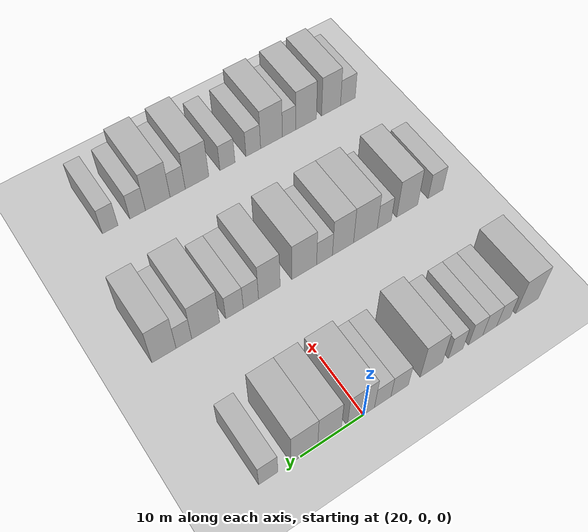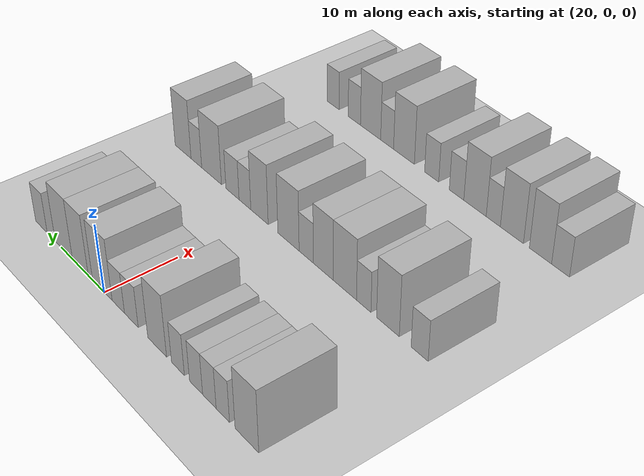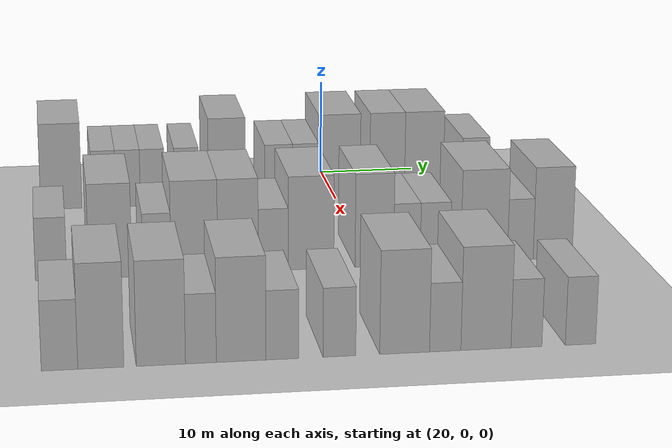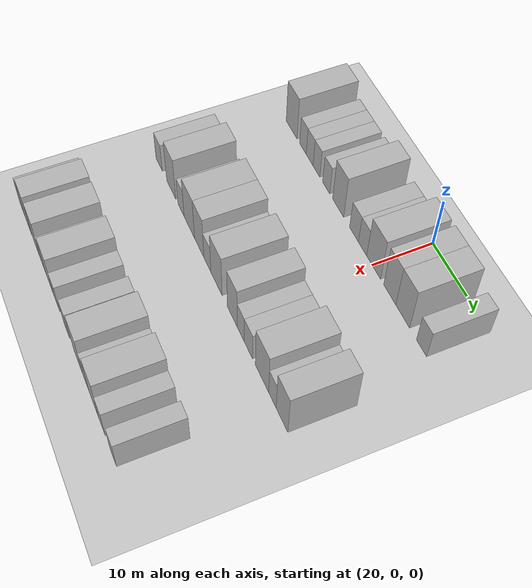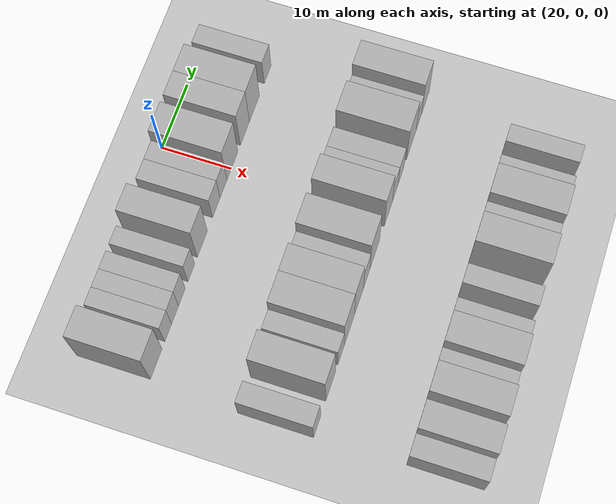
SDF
<sdf version="1.6">
 <world name="default">
  <include><name>ground_plane_1</name><uri>model://HANNAS_ground_plane</uri></include>
  <model name="building_88">
   <static>1</static>
   <pose>25.0000 -28.3885 0 0.000000 0.000000 0.000000</pose>
   <link name="link">
    <pose>0 0 4.50 0 0 0</pose>
    <collision name="collision"><geometry><box><size>10.0000 4.1904 9.0000</size></box></geometry></collision>
    <visual name="visual">
     <cast_shadows>0</cast_shadows>
     <geometry><box><size>10.0000 4.1904 9.0000</size></box></geometry>
     <material>
      <script>
       <uri>model://HANNAS_wall/materials/scripts</uri>
       <uri>model://HANNAS_wall/materials/textures</uri>
       <name>vrc/HANNAS_wall</name>
      </script>
     </material>
    </visual>
   </link>
  </model>
  <model name="building_89">
   <static>1</static>
   <pose>25.0000 -24.0654 0 0.000000 0.000000 0.000000</pose>
   <link name="link">
    <pose>0 0 3.00 0 0 0</pose>
    <collision name="collision"><geometry><box><size>10.0000 2.4556 6.0000</size></box></geometry></collision>
    <visual name="visual">
     <cast_shadows>0</cast_shadows>
     <geometry><box><size>10.0000 2.4556 6.0000</size></box></geometry>
     <material>
      <script>
       <uri>model://HANNAS_wall/materials/scripts</uri>
       <uri>model://HANNAS_wall/materials/textures</uri>
       <name>vrc/HANNAS_wall</name>
      </script>
     </material>
    </visual>
   </link>
  </model>
  <model name="building_90">
   <static>1</static>
   <pose>25.0000 -21.5696 0 0.000000 0.000000 0.000000</pose>
   <link name="link">
    <pose>0 0 3.00 0 0 0</pose>
    <collision name="collision"><geometry><box><size>10.0000 2.5361 6.0000</size></box></geometry></collision>
    <visual name="visual">
     <cast_shadows>0</cast_shadows>
     <geometry><box><size>10.0000 2.5361 6.0000</size></box></geometry>
     <material>
      <script>
       <uri>model://HANNAS_wall/materials/scripts</uri>
       <uri>model://HANNAS_wall/materials/textures</uri>
       <name>vrc/HANNAS_wall</name>
      </script>
     </material>
    </visual>
   </link>
  </model>
  <model name="building_91">
   <static>1</static>
   <pose>25.0000 -19.0458 0 0.000000 0.000000 0.000000</pose>
   <link name="link">
    <pose>0 0 3.00 0 0 0</pose>
    <collision name="collision"><geometry><box><size>10.0000 2.5114 6.0000</size></box></geometry></collision>
    <visual name="visual">
     <cast_shadows>0</cast_shadows>
     <geometry><box><size>10.0000 2.5114 6.0000</size></box></geometry>
     <material>
      <script>
       <uri>model://HANNAS_wall/materials/scripts</uri>
       <uri>model://HANNAS_wall/materials/textures</uri>
       <name>vrc/HANNAS_wall</name>
      </script>
     </material>
    </visual>
   </link>
  </model>
  <model name="building_92">
   <static>1</static>
   <pose>25.0000 -15.5203 0 0.000000 0.000000 0.000000</pose>
   <link name="link">
    <pose>0 0 3.00 0 0 0</pose>
    <collision name="collision"><geometry><box><size>10.0000 2.5397 6.0000</size></box></geometry></collision>
    <visual name="visual">
     <cast_shadows>0</cast_shadows>
     <geometry><box><size>10.0000 2.5397 6.0000</size></box></geometry>
     <material>
      <script>
       <uri>model://HANNAS_wall/materials/scripts</uri>
       <uri>model://HANNAS_wall/materials/textures</uri>
       <name>vrc/HANNAS_wall</name>
      </script>
     </material>
    </visual>
   </link>
  </model>
  <model name="building_93">
   <static>1</static>
   <pose>25.0000 -11.3293 0 0.000000 0.000000 0.000000</pose>
   <link name="link">
    <pose>0 0 4.50 0 0 0</pose>
    <collision name="collision"><geometry><box><size>10.0000 3.8422 9.0000</size></box></geometry></collision>
    <visual name="visual">
     <cast_shadows>0</cast_shadows>
     <geometry><box><size>10.0000 3.8422 9.0000</size></box></geometry>
     <material>
      <script>
       <uri>model://HANNAS_wall/materials/scripts</uri>
       <uri>model://HANNAS_wall/materials/textures</uri>
       <name>vrc/HANNAS_wall</name>
      </script>
     </material>
    </visual>
   </link>
  </model>
  <model name="building_94">
   <static>1</static>
   <pose>25.0000 -5.9409 0 0.000000 0.000000 0.000000</pose>
   <link name="link">
    <pose>0 0 3.00 0 0 0</pose>
    <collision name="collision"><geometry><box><size>10.0000 2.9345 6.0000</size></box></geometry></collision>
    <visual name="visual">
     <cast_shadows>0</cast_shadows>
     <geometry><box><size>10.0000 2.9345 6.0000</size></box></geometry>
     <material>
      <script>
       <uri>model://HANNAS_wall/materials/scripts</uri>
       <uri>model://HANNAS_wall/materials/textures</uri>
       <name>vrc/HANNAS_wall</name>
      </script>
     </material>
    </visual>
   </link>
  </model>
  <model name="building_95">
   <static>1</static>
   <pose>25.0000 -3.1197 0 0.000000 0.000000 0.000000</pose>
   <link name="link">
    <pose>0 0 3.00 0 0 0</pose>
    <collision name="collision"><geometry><box><size>10.0000 2.7080 6.0000</size></box></geometry></collision>
    <visual name="visual">
     <cast_shadows>0</cast_shadows>
     <geometry><box><size>10.0000 2.7080 6.0000</size></box></geometry>
     <material>
      <script>
       <uri>model://HANNAS_wall/materials/scripts</uri>
       <uri>model://HANNAS_wall/materials/textures</uri>
       <name>vrc/HANNAS_wall</name>
      </script>
     </material>
    </visual>
   </link>
  </model>
  <model name="building_96">
   <static>1</static>
   <pose>25.0000 0.4315 0 0.000000 0.000000 0.000000</pose>
   <link name="link">
    <pose>0 0 4.50 0 0 0</pose>
    <collision name="collision"><geometry><box><size>10.0000 4.3944 9.0000</size></box></geometry></collision>
    <visual name="visual">
     <cast_shadows>0</cast_shadows>
     <geometry><box><size>10.0000 4.3944 9.0000</size></box></geometry>
     <material>
      <script>
       <uri>model://HANNAS_wall/materials/scripts</uri>
       <uri>model://HANNAS_wall/materials/textures</uri>
       <name>vrc/HANNAS_wall</name>
      </script>
     </material>
    </visual>
   </link>
  </model>
  <model name="building_97">
   <static>1</static>
   <pose>25.0000 5.4753 0 0.000000 0.000000 0.000000</pose>
   <link name="link">
    <pose>0 0 4.50 0 0 0</pose>
    <collision name="collision"><geometry><box><size>10.0000 3.6933 9.0000</size></box></geometry></collision>
    <visual name="visual">
     <cast_shadows>0</cast_shadows>
     <geometry><box><size>10.0000 3.6933 9.0000</size></box></geometry>
     <material>
      <script>
       <uri>model://HANNAS_wall/materials/scripts</uri>
       <uri>model://HANNAS_wall/materials/textures</uri>
       <name>vrc/HANNAS_wall</name>
      </script>
     </material>
    </visual>
   </link>
  </model>
  <model name="building_98">
   <static>1</static>
   <pose>25.0000 9.3908 0 0.000000 0.000000 0.000000</pose>
   <link name="link">
    <pose>0 0 4.50 0 0 0</pose>
    <collision name="collision"><geometry><box><size>10.0000 4.1376 9.0000</size></box></geometry></collision>
    <visual name="visual">
     <cast_shadows>0</cast_shadows>
     <geometry><box><size>10.0000 4.1376 9.0000</size></box></geometry>
     <material>
      <script>
       <uri>model://HANNAS_wall/materials/scripts</uri>
       <uri>model://HANNAS_wall/materials/textures</uri>
       <name>vrc/HANNAS_wall</name>
      </script>
     </material>
    </visual>
   </link>
  </model>
  <model name="building_99">
   <static>1</static>
   <pose>25.0000 14.9051 0 0.000000 0.000000 0.000000</pose>
   <link name="link">
    <pose>0 0 3.00 0 0 0</pose>
    <collision name="collision"><geometry><box><size>10.0000 2.8911 6.0000</size></box></geometry></collision>
    <visual name="visual">
     <cast_shadows>0</cast_shadows>
     <geometry><box><size>10.0000 2.8911 6.0000</size></box></geometry>
     <material>
      <script>
       <uri>model://HANNAS_wall/materials/scripts</uri>
       <uri>model://HANNAS_wall/materials/textures</uri>
       <name>vrc/HANNAS_wall</name>
      </script>
     </material>
    </visual>
   </link>
  </model>
  <model name="building_275">
   <static>1</static>
   <pose>47.0000 -29.7096 0 0.000000 0.000000 0.000000</pose>
   <link name="link">
    <pose>0 0 3.00 0 0 0</pose>
    <collision name="collision"><geometry><box><size>10.0000 2.8460 6.0000</size></box></geometry></collision>
    <visual name="visual">
     <cast_shadows>0</cast_shadows>
     <geometry><box><size>10.0000 2.8460 6.0000</size></box></geometry>
     <material>
      <script>
       <uri>model://HANNAS_wall/materials/scripts</uri>
       <uri>model://HANNAS_wall/materials/textures</uri>
       <name>vrc/HANNAS_wall</name>
      </script>
     </material>
    </visual>
   </link>
  </model>
  <model name="building_276">
   <static>1</static>
   <pose>47.0000 -24.3093 0 0.000000 0.000000 0.000000</pose>
   <link name="link">
    <pose>0 0 4.50 0 0 0</pose>
    <collision name="collision"><geometry><box><size>10.0000 3.9545 9.0000</size></box></geometry></collision>
    <visual name="visual">
     <cast_shadows>0</cast_shadows>
     <geometry><box><size>10.0000 3.9545 9.0000</size></box></geometry>
     <material>
      <script>
       <uri>model://HANNAS_wall/materials/scripts</uri>
       <uri>model://HANNAS_wall/materials/textures</uri>
       <name>vrc/HANNAS_wall</name>
      </script>
     </material>
    </visual>
   </link>
  </model>
  <model name="building_277">
   <static>1</static>
   <pose>47.0000 -20.0316 0 0.000000 0.000000 0.000000</pose>
   <link name="link">
    <pose>0 0 3.00 0 0 0</pose>
    <collision name="collision"><geometry><box><size>10.0000 2.6008 6.0000</size></box></geometry></collision>
    <visual name="visual">
     <cast_shadows>0</cast_shadows>
     <geometry><box><size>10.0000 2.6008 6.0000</size></box></geometry>
     <material>
      <script>
       <uri>model://HANNAS_wall/materials/scripts</uri>
       <uri>model://HANNAS_wall/materials/textures</uri>
       <name>vrc/HANNAS_wall</name>
      </script>
     </material>
    </visual>
   </link>
  </model>
  <model name="building_278">
   <static>1</static>
   <pose>47.0000 -16.5733 0 0.000000 0.000000 0.000000</pose>
   <link name="link">
    <pose>0 0 4.50 0 0 0</pose>
    <collision name="collision"><geometry><box><size>10.0000 4.3157 9.0000</size></box></geometry></collision>
    <visual name="visual">
     <cast_shadows>0</cast_shadows>
     <geometry><box><size>10.0000 4.3157 9.0000</size></box></geometry>
     <material>
      <script>
       <uri>model://HANNAS_wall/materials/scripts</uri>
       <uri>model://HANNAS_wall/materials/textures</uri>
       <name>vrc/HANNAS_wall</name>
      </script>
     </material>
    </visual>
   </link>
  </model>
  <model name="building_279">
   <static>1</static>
   <pose>47.0000 -12.5269 0 0.000000 0.000000 0.000000</pose>
   <link name="link">
    <pose>0 0 4.50 0 0 0</pose>
    <collision name="collision"><geometry><box><size>10.0000 3.7772 9.0000</size></box></geometry></collision>
    <visual name="visual">
     <cast_shadows>0</cast_shadows>
     <geometry><box><size>10.0000 3.7772 9.0000</size></box></geometry>
     <material>
      <script>
       <uri>model://HANNAS_wall/materials/scripts</uri>
       <uri>model://HANNAS_wall/materials/textures</uri>
       <name>vrc/HANNAS_wall</name>
      </script>
     </material>
    </visual>
   </link>
  </model>
  <model name="building_280">
   <static>1</static>
   <pose>47.0000 -9.2367 0 0.000000 0.000000 0.000000</pose>
   <link name="link">
    <pose>0 0 3.00 0 0 0</pose>
    <collision name="collision"><geometry><box><size>10.0000 2.8031 6.0000</size></box></geometry></collision>
    <visual name="visual">
     <cast_shadows>0</cast_shadows>
     <geometry><box><size>10.0000 2.8031 6.0000</size></box></geometry>
     <material>
      <script>
       <uri>model://HANNAS_wall/materials/scripts</uri>
       <uri>model://HANNAS_wall/materials/textures</uri>
       <name>vrc/HANNAS_wall</name>
      </script>
     </material>
    </visual>
   </link>
  </model>
  <model name="building_281">
   <static>1</static>
   <pose>47.0000 -5.6960 0 0.000000 0.000000 0.000000</pose>
   <link name="link">
    <pose>0 0 4.50 0 0 0</pose>
    <collision name="collision"><geometry><box><size>10.0000 4.2783 9.0000</size></box></geometry></collision>
    <visual name="visual">
     <cast_shadows>0</cast_shadows>
     <geometry><box><size>10.0000 4.2783 9.0000</size></box></geometry>
     <material>
      <script>
       <uri>model://HANNAS_wall/materials/scripts</uri>
       <uri>model://HANNAS_wall/materials/textures</uri>
       <name>vrc/HANNAS_wall</name>
      </script>
     </material>
    </visual>
   </link>
  </model>
  <model name="building_282">
   <static>1</static>
   <pose>47.0000 0.2681 0 0.000000 0.000000 0.000000</pose>
   <link name="link">
    <pose>0 0 4.50 0 0 0</pose>
    <collision name="collision"><geometry><box><size>10.0000 3.6499 9.0000</size></box></geometry></collision>
    <visual name="visual">
     <cast_shadows>0</cast_shadows>
     <geometry><box><size>10.0000 3.6499 9.0000</size></box></geometry>
     <material>
      <script>
       <uri>model://HANNAS_wall/materials/scripts</uri>
       <uri>model://HANNAS_wall/materials/textures</uri>
       <name>vrc/HANNAS_wall</name>
      </script>
     </material>
    </visual>
   </link>
  </model>
  <model name="building_283">
   <static>1</static>
   <pose>47.0000 3.3596 0 0.000000 0.000000 0.000000</pose>
   <link name="link">
    <pose>0 0 3.00 0 0 0</pose>
    <collision name="collision"><geometry><box><size>10.0000 2.5332 6.0000</size></box></geometry></collision>
    <visual name="visual">
     <cast_shadows>0</cast_shadows>
     <geometry><box><size>10.0000 2.5332 6.0000</size></box></geometry>
     <material>
      <script>
       <uri>model://HANNAS_wall/materials/scripts</uri>
       <uri>model://HANNAS_wall/materials/textures</uri>
       <name>vrc/HANNAS_wall</name>
      </script>
     </material>
    </visual>
   </link>
  </model>
  <model name="building_284">
   <static>1</static>
   <pose>47.0000 6.0678 0 0.000000 0.000000 0.000000</pose>
   <link name="link">
    <pose>0 0 3.00 0 0 0</pose>
    <collision name="collision"><geometry><box><size>10.0000 2.8831 6.0000</size></box></geometry></collision>
    <visual name="visual">
     <cast_shadows>0</cast_shadows>
     <geometry><box><size>10.0000 2.8831 6.0000</size></box></geometry>
     <material>
      <script>
       <uri>model://HANNAS_wall/materials/scripts</uri>
       <uri>model://HANNAS_wall/materials/textures</uri>
       <name>vrc/HANNAS_wall</name>
      </script>
     </material>
    </visual>
   </link>
  </model>
  <model name="building_285">
   <static>1</static>
   <pose>47.0000 10.7539 0 0.000000 0.000000 0.000000</pose>
   <link name="link">
    <pose>0 0 4.50 0 0 0</pose>
    <collision name="collision"><geometry><box><size>10.0000 4.4890 9.0000</size></box></geometry></collision>
    <visual name="visual">
     <cast_shadows>0</cast_shadows>
     <geometry><box><size>10.0000 4.4890 9.0000</size></box></geometry>
     <material>
      <script>
       <uri>model://HANNAS_wall/materials/scripts</uri>
       <uri>model://HANNAS_wall/materials/textures</uri>
       <name>vrc/HANNAS_wall</name>
      </script>
     </material>
    </visual>
   </link>
  </model>
  <model name="building_286">
   <static>1</static>
   <pose>47.0000 14.2380 0 0.000000 0.000000 0.000000</pose>
   <link name="link">
    <pose>0 0 3.00 0 0 0</pose>
    <collision name="collision"><geometry><box><size>10.0000 2.4792 6.0000</size></box></geometry></collision>
    <visual name="visual">
     <cast_shadows>0</cast_shadows>
     <geometry><box><size>10.0000 2.4792 6.0000</size></box></geometry>
     <material>
      <script>
       <uri>model://HANNAS_wall/materials/scripts</uri>
       <uri>model://HANNAS_wall/materials/textures</uri>
       <name>vrc/HANNAS_wall</name>
      </script>
     </material>
    </visual>
   </link>
  </model>
  <model name="building_287">
   <static>1</static>
   <pose>47.0000 17.3684 0 0.000000 0.000000 0.000000</pose>
   <link name="link">
    <pose>0 0 4.50 0 0 0</pose>
    <collision name="collision"><geometry><box><size>10.0000 3.7816 9.0000</size></box></geometry></collision>
    <visual name="visual">
     <cast_shadows>0</cast_shadows>
     <geometry><box><size>10.0000 3.7816 9.0000</size></box></geometry>
     <material>
      <script>
       <uri>model://HANNAS_wall/materials/scripts</uri>
       <uri>model://HANNAS_wall/materials/textures</uri>
       <name>vrc/HANNAS_wall</name>
      </script>
     </material>
    </visual>
   </link>
  </model>
  <model name="building_467">
   <static>1</static>
   <pose>69.0000 -29.3229 0 0.000000 0.000000 0.000000</pose>
   <link name="link">
    <pose>0 0 3.00 0 0 0</pose>
    <collision name="collision"><geometry><box><size>10.0000 2.9201 6.0000</size></box></geometry></collision>
    <visual name="visual">
     <cast_shadows>0</cast_shadows>
     <geometry><box><size>10.0000 2.9201 6.0000</size></box></geometry>
     <material>
      <script>
       <uri>model://HANNAS_wall/materials/scripts</uri>
       <uri>model://HANNAS_wall/materials/textures</uri>
       <name>vrc/HANNAS_wall</name>
      </script>
     </material>
    </visual>
   </link>
  </model>
  <model name="building_468">
   <static>1</static>
   <pose>69.0000 -26.0053 0 0.000000 0.000000 0.000000</pose>
   <link name="link">
    <pose>0 0 4.50 0 0 0</pose>
    <collision name="collision"><geometry><box><size>10.0000 3.7152 9.0000</size></box></geometry></collision>
    <visual name="visual">
     <cast_shadows>0</cast_shadows>
     <geometry><box><size>10.0000 3.7152 9.0000</size></box></geometry>
     <material>
      <script>
       <uri>model://HANNAS_wall/materials/scripts</uri>
       <uri>model://HANNAS_wall/materials/textures</uri>
       <name>vrc/HANNAS_wall</name>
      </script>
     </material>
    </visual>
   </link>
  </model>
  <model name="building_469">
   <static>1</static>
   <pose>69.0000 -21.1502 0 0.000000 0.000000 0.000000</pose>
   <link name="link">
    <pose>0 0 4.50 0 0 0</pose>
    <collision name="collision"><geometry><box><size>10.0000 3.9950 9.0000</size></box></geometry></collision>
    <visual name="visual">
     <cast_shadows>0</cast_shadows>
     <geometry><box><size>10.0000 3.9950 9.0000</size></box></geometry>
     <material>
      <script>
       <uri>model://HANNAS_wall/materials/scripts</uri>
       <uri>model://HANNAS_wall/materials/textures</uri>
       <name>vrc/HANNAS_wall</name>
      </script>
     </material>
    </visual>
   </link>
  </model>
  <model name="building_470">
   <static>1</static>
   <pose>69.0000 -17.8982 0 0.000000 0.000000 0.000000</pose>
   <link name="link">
    <pose>0 0 3.00 0 0 0</pose>
    <collision name="collision"><geometry><box><size>10.0000 2.5090 6.0000</size></box></geometry></collision>
    <visual name="visual">
     <cast_shadows>0</cast_shadows>
     <geometry><box><size>10.0000 2.5090 6.0000</size></box></geometry>
     <material>
      <script>
       <uri>model://HANNAS_wall/materials/scripts</uri>
       <uri>model://HANNAS_wall/materials/textures</uri>
       <name>vrc/HANNAS_wall</name>
      </script>
     </material>
    </visual>
   </link>
  </model>
  <model name="building_471">
   <static>1</static>
   <pose>69.0000 -14.6063 0 0.000000 0.000000 0.000000</pose>
   <link name="link">
    <pose>0 0 4.50 0 0 0</pose>
    <collision name="collision"><geometry><box><size>10.0000 4.0749 9.0000</size></box></geometry></collision>
    <visual name="visual">
     <cast_shadows>0</cast_shadows>
     <geometry><box><size>10.0000 4.0749 9.0000</size></box></geometry>
     <material>
      <script>
       <uri>model://HANNAS_wall/materials/scripts</uri>
       <uri>model://HANNAS_wall/materials/textures</uri>
       <name>vrc/HANNAS_wall</name>
      </script>
     </material>
    </visual>
   </link>
  </model>
  <model name="building_472">
   <static>1</static>
   <pose>69.0000 -11.2140 0 0.000000 0.000000 0.000000</pose>
   <link name="link">
    <pose>0 0 3.00 0 0 0</pose>
    <collision name="collision"><geometry><box><size>10.0000 2.7097 6.0000</size></box></geometry></collision>
    <visual name="visual">
     <cast_shadows>0</cast_shadows>
     <geometry><box><size>10.0000 2.7097 6.0000</size></box></geometry>
     <material>
      <script>
       <uri>model://HANNAS_wall/materials/scripts</uri>
       <uri>model://HANNAS_wall/materials/textures</uri>
       <name>vrc/HANNAS_wall</name>
      </script>
     </material>
    </visual>
   </link>
  </model>
  <model name="building_473">
   <static>1</static>
   <pose>69.0000 -6.4988 0 0.000000 0.000000 0.000000</pose>
   <link name="link">
    <pose>0 0 3.00 0 0 0</pose>
    <collision name="collision"><geometry><box><size>10.0000 2.7207 6.0000</size></box></geometry></collision>
    <visual name="visual">
     <cast_shadows>0</cast_shadows>
     <geometry><box><size>10.0000 2.7207 6.0000</size></box></geometry>
     <material>
      <script>
       <uri>model://HANNAS_wall/materials/scripts</uri>
       <uri>model://HANNAS_wall/materials/textures</uri>
       <name>vrc/HANNAS_wall</name>
      </script>
     </material>
    </visual>
   </link>
  </model>
  <model name="building_474">
   <static>1</static>
   <pose>69.0000 -1.0537 0 0.000000 0.000000 0.000000</pose>
   <link name="link">
    <pose>0 0 4.50 0 0 0</pose>
    <collision name="collision"><geometry><box><size>10.0000 4.1696 9.0000</size></box></geometry></collision>
    <visual name="visual">
     <cast_shadows>0</cast_shadows>
     <geometry><box><size>10.0000 4.1696 9.0000</size></box></geometry>
     <material>
      <script>
       <uri>model://HANNAS_wall/materials/scripts</uri>
       <uri>model://HANNAS_wall/materials/textures</uri>
       <name>vrc/HANNAS_wall</name>
      </script>
     </material>
    </visual>
   </link>
  </model>
  <model name="building_475">
   <static>1</static>
   <pose>69.0000 2.3524 0 0.000000 0.000000 0.000000</pose>
   <link name="link">
    <pose>0 0 3.00 0 0 0</pose>
    <collision name="collision"><geometry><box><size>10.0000 2.6427 6.0000</size></box></geometry></collision>
    <visual name="visual">
     <cast_shadows>0</cast_shadows>
     <geometry><box><size>10.0000 2.6427 6.0000</size></box></geometry>
     <material>
      <script>
       <uri>model://HANNAS_wall/materials/scripts</uri>
       <uri>model://HANNAS_wall/materials/textures</uri>
       <name>vrc/HANNAS_wall</name>
      </script>
     </material>
    </visual>
   </link>
  </model>
  <model name="building_476">
   <static>1</static>
   <pose>69.0000 5.7955 0 0.000000 0.000000 0.000000</pose>
   <link name="link">
    <pose>0 0 4.50 0 0 0</pose>
    <collision name="collision"><geometry><box><size>10.0000 4.2434 9.0000</size></box></geometry></collision>
    <visual name="visual">
     <cast_shadows>0</cast_shadows>
     <geometry><box><size>10.0000 4.2434 9.0000</size></box></geometry>
     <material>
      <script>
       <uri>model://HANNAS_wall/materials/scripts</uri>
       <uri>model://HANNAS_wall/materials/textures</uri>
       <name>vrc/HANNAS_wall</name>
      </script>
     </material>
    </visual>
   </link>
  </model>
  <model name="building_477">
   <static>1</static>
   <pose>69.0000 9.2351 0 0.000000 0.000000 0.000000</pose>
   <link name="link">
    <pose>0 0 3.00 0 0 0</pose>
    <collision name="collision"><geometry><box><size>10.0000 2.6357 6.0000</size></box></geometry></collision>
    <visual name="visual">
     <cast_shadows>0</cast_shadows>
     <geometry><box><size>10.0000 2.6357 6.0000</size></box></geometry>
     <material>
      <script>
       <uri>model://HANNAS_wall/materials/scripts</uri>
       <uri>model://HANNAS_wall/materials/textures</uri>
       <name>vrc/HANNAS_wall</name>
      </script>
     </material>
    </visual>
   </link>
  </model>
  <model name="building_478">
   <static>1</static>
   <pose>69.0000 13.8510 0 0.000000 0.000000 0.000000</pose>
   <link name="link">
    <pose>0 0 3.00 0 0 0</pose>
    <collision name="collision"><geometry><box><size>10.0000 2.5962 6.0000</size></box></geometry></collision>
    <visual name="visual">
     <cast_shadows>0</cast_shadows>
     <geometry><box><size>10.0000 2.5962 6.0000</size></box></geometry>
     <material>
      <script>
       <uri>model://HANNAS_wall/materials/scripts</uri>
       <uri>model://HANNAS_wall/materials/textures</uri>
       <name>vrc/HANNAS_wall</name>
      </script>
     </material>
    </visual>
   </link>
  </model>
 </world>
</sdf>
